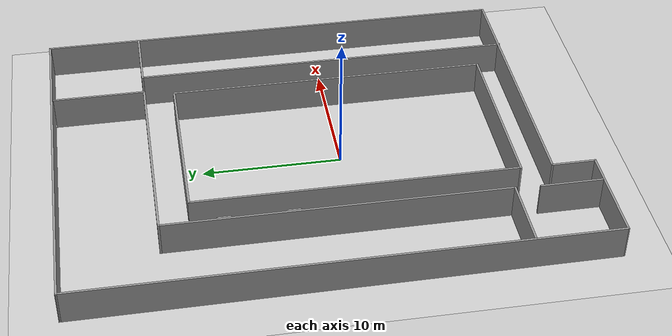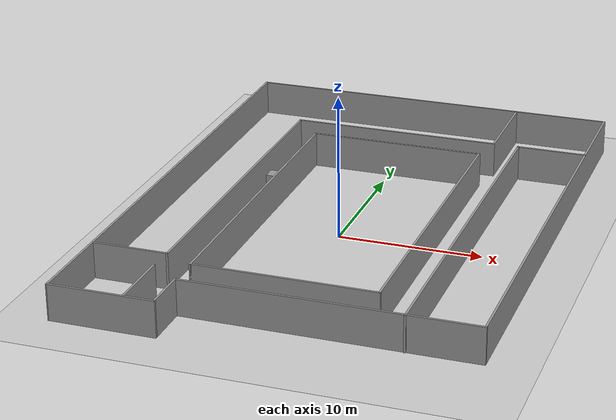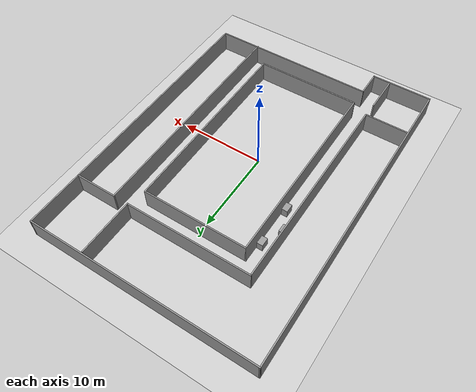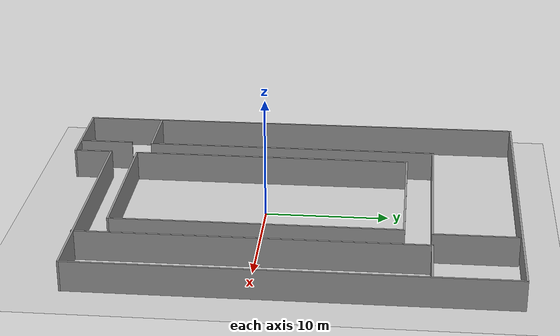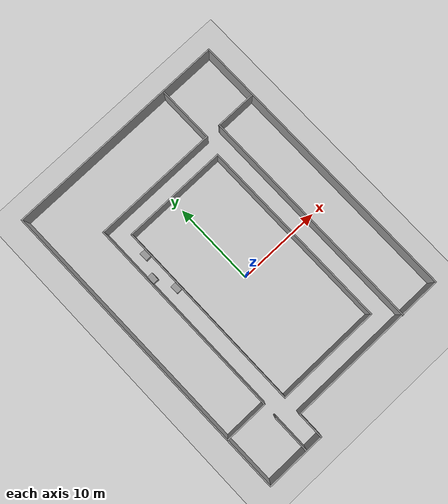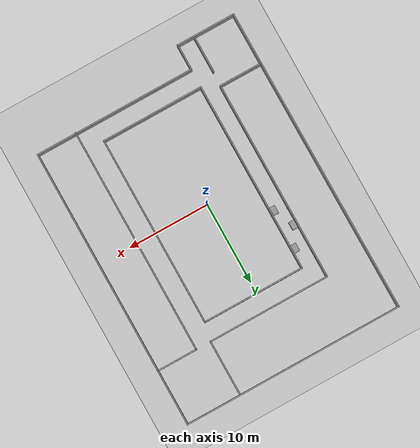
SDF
<sdf version="1.7">
 <world name="default">
  <light name="sun" type="directional">
   <pose>0 0 10 0 -0 0</pose>
   <diffuse>0.8 0.8 0.8 1</diffuse>
   <specular>0.2 0.2 0.2 1</specular>
   <attenuation>
    <range>1000</range>
    <constant>0.9</constant>
    <linear>0.01</linear>
    <quadratic>0.001</quadratic>
   </attenuation>
   <direction>-0.5 0.1 -0.9</direction>
   <spot><inner_angle>0</inner_angle><outer_angle>0</outer_angle><falloff>0</falloff></spot>
  </light>
  <model name="ground_plane">
   <static>1</static>
   <link name="link">
    <collision name="collision">
     <geometry><plane><normal>0 0 1</normal><size>100 100</size></plane></geometry>
     <surface>
      <contact><collide_bitmask>65535</collide_bitmask></contact>
      <friction><ode><mu>100</mu><mu2>50</mu2></ode></friction>
     </surface>
    </collision>
    <visual name="visual">
     <cast_shadows>0</cast_shadows>
     <geometry><plane><normal>0 0 1</normal><size>100 100</size></plane></geometry>
     <material>
      <script><uri>file://media/materials/scripts/gazebo.material</uri><name>Gazebo/Grey</name></script>
     </material>
    </visual>
   </link>
  </model>
  <gravity>0 0 -9.8</gravity>
  <magnetic_field>6e-06 2.3e-05 -4.2e-05</magnetic_field>
  <atmosphere type="adiabatic"/>
  <physics name="default_physics" default="0" type="ode">
   <max_step_size>0.001</max_step_size>
   <real_time_factor>1</real_time_factor>
   <real_time_update_rate>1000</real_time_update_rate>
  </physics>
  <scene><ambient>0.4 0.4 0.4 1</ambient><background>0.7 0.7 0.7 1</background><shadows>1</shadows></scene>
  <audio><device>default</device></audio>
  <spherical_coordinates>
   <surface_model>EARTH_WGS84</surface_model>
   <latitude_deg>0</latitude_deg>
   <longitude_deg>0</longitude_deg>
   <elevation>0</elevation>
   <heading_deg>0</heading_deg>
  </spherical_coordinates>
  <model name="GGB_lab">
   <pose>0.419741 1.65793 0 0 -0 0</pose>
   <link name="Wall_0">
    <collision name="Wall_0_Collision">
     <geometry><box><size>27 0.15 2.5</size></box></geometry>
     <pose>0 0 1.25 0 -0 0</pose>
    </collision>
    <visual name="Wall_0_Visual">
     <pose>0 0 1.25 0 -0 0</pose>
     <geometry><box><size>27 0.15 2.5</size></box></geometry>
     <material>
      <script><uri>file://media/materials/scripts/gazebo.material</uri><name>Gazebo/Grey</name></script>
      <ambient>1 1 1 1</ambient>
     </material>
     <meta><layer>0</layer></meta>
    </visual>
    <pose>0.000153 18.725 0 0 -0 0</pose>
   </link>
   <link name="Wall_1">
    <collision name="Wall_1_Collision">
     <geometry><box><size>34.5 0.15 2.5</size></box></geometry>
     <pose>0 0 1.25 0 -0 0</pose>
    </collision>
    <visual name="Wall_1_Visual">
     <pose>0 0 1.25 0 -0 0</pose>
     <geometry><box><size>34.5 0.15 2.5</size></box></geometry>
     <material>
      <script><uri>file://media/materials/scripts/gazebo.material</uri><name>Gazebo/Grey</name></script>
      <ambient>1 1 1 1</ambient>
     </material>
     <meta><layer>0</layer></meta>
    </visual>
    <pose>13.4251 1.55001 0 0 -0 -1.5708</pose>
   </link>
   <link name="Wall_10">
    <collision name="Wall_10_Collision">
     <geometry><box><size>15 0.15 2.5</size></box></geometry>
     <pose>0 0 1.25 0 -0 0</pose>
    </collision>
    <visual name="Wall_10_Visual">
     <pose>0 0 1.25 0 -0 0</pose>
     <geometry><box><size>15 0.15 2.5</size></box></geometry>
     <material>
      <script><uri>file://media/materials/scripts/gazebo.material</uri><name>Gazebo/Grey</name></script>
      <ambient>1 1 1 1</ambient>
     </material>
     <meta><layer>0</layer></meta>
    </visual>
    <pose>-0.683052 11.9115 0 0 -0 3.14159</pose>
   </link>
   <link name="Wall_11">
    <collision name="Wall_11_Collision">
     <geometry><box><size>24.5 0.15 2.5</size></box></geometry>
     <pose>0 0 1.25 0 -0 0</pose>
    </collision>
    <visual name="Wall_11_Visual">
     <pose>0 0 1.25 0 -0 0</pose>
     <geometry><box><size>24.5 0.15 2.5</size></box></geometry>
     <material>
      <script><uri>file://media/materials/scripts/gazebo.material</uri><name>Gazebo/Grey</name></script>
      <ambient>1 1 1 1</ambient>
     </material>
     <meta><layer>0</layer></meta>
    </visual>
    <pose>-8.10805 -0.263517 0 0 -0 -1.5708</pose>
   </link>
   <link name="Wall_12">
    <collision name="Wall_12_Collision">
     <geometry><box><size>5.25 0.15 2.5</size></box></geometry>
     <pose>0 0 1.25 0 -0 0</pose>
    </collision>
    <visual name="Wall_12_Visual">
     <pose>0 0 1.25 0 -0 0</pose>
     <geometry><box><size>5.25 0.15 2.5</size></box></geometry>
     <material>
      <script><uri>file://media/materials/scripts/gazebo.material</uri><name>Gazebo/Grey</name></script>
      <ambient>1 1 1 1</ambient>
     </material>
     <meta><layer>0</layer></meta>
    </visual>
    <pose>-10.6581 -12.4385 0 0 -0 3.14159</pose>
   </link>
   <link name="Wall_14">
    <collision name="Wall_14_Collision">
     <geometry><box><size>4.5 0.15 2.5</size></box></geometry>
     <pose>0 0 1.25 0 -0 0</pose>
    </collision>
    <visual name="Wall_14_Visual">
     <pose>0 0 1.25 0 -0 0</pose>
     <geometry><box><size>4.5 0.15 2.5</size></box></geometry>
     <material>
      <script><uri>file://media/materials/scripts/gazebo.material</uri><name>Gazebo/Grey</name></script>
      <ambient>1 1 1 1</ambient>
     </material>
     <meta><layer>0</layer></meta>
    </visual>
    <pose>-8.22346 -16.4226 0 0 -0 -1.5708</pose>
   </link>
   <link name="Wall_16">
    <collision name="Wall_16_Collision">
     <geometry><box><size>6.75 0.15 2.5</size></box></geometry>
     <pose>0 0 1.25 0 -0 0</pose>
    </collision>
    <visual name="Wall_16_Visual">
     <pose>0 0 1.25 0 -0 0</pose>
     <geometry><box><size>6.75 0.15 2.5</size></box></geometry>
     <material>
      <script><uri>file://media/materials/scripts/gazebo.material</uri><name>Gazebo/Grey</name></script>
      <ambient>1 1 1 1</ambient>
     </material>
     <meta><layer>0</layer></meta>
    </visual>
    <pose>6.74195 15.2115 0 0 -0 1.5708</pose>
   </link>
   <link name="Wall_18">
    <collision name="Wall_18_Collision">
     <geometry><box><size>12.5 0.15 2.5</size></box></geometry>
     <pose>0 0 1.25 0 -0 0</pose>
    </collision>
    <visual name="Wall_18_Visual">
     <pose>0 0 1.25 0 -0 0</pose>
     <geometry><box><size>12.5 0.15 2.5</size></box></geometry>
     <material>
      <script><uri>file://media/materials/scripts/gazebo.material</uri><name>Gazebo/Grey</name></script>
      <ambient>1 1 1 1</ambient>
     </material>
     <meta><layer>0</layer></meta>
    </visual>
    <pose>0.050346 9.72142 0 0 -0 0</pose>
   </link>
   <link name="Wall_19">
    <collision name="Wall_19_Collision">
     <geometry><box><size>23.25 0.15 2.5</size></box></geometry>
     <pose>0 0 1.25 0 -0 0</pose>
    </collision>
    <visual name="Wall_19_Visual">
     <pose>0 0 1.25 0 -0 0</pose>
     <geometry><box><size>23.25 0.15 2.5</size></box></geometry>
     <material>
      <script><uri>file://media/materials/scripts/gazebo.material</uri><name>Gazebo/Grey</name></script>
      <ambient>1 1 1 1</ambient>
     </material>
     <meta><layer>0</layer></meta>
    </visual>
    <pose>6.22535 -1.82858 0 0 -0 -1.5708</pose>
   </link>
   <link name="Wall_2">
    <collision name="Wall_2_Collision">
     <geometry><box><size>19.75 0.15 2.5</size></box></geometry>
     <pose>0 0 1.25 0 -0 0</pose>
    </collision>
    <visual name="Wall_2_Visual">
     <pose>0 0 1.25 0 -0 0</pose>
     <geometry><box><size>19.75 0.15 2.5</size></box></geometry>
     <material>
      <script><uri>file://media/materials/scripts/gazebo.material</uri><name>Gazebo/Grey</name></script>
      <ambient>1 1 1 1</ambient>
     </material>
     <meta><layer>0</layer></meta>
    </visual>
    <pose>3.62515 -15.625 0 0 -0 3.14159</pose>
   </link>
   <link name="Wall_20">
    <collision name="Wall_20_Collision">
     <geometry><box><size>12.5 0.15 2.5</size></box></geometry>
     <pose>0 0 1.25 0 -0 0</pose>
    </collision>
    <visual name="Wall_20_Visual">
     <pose>0 0 1.25 0 -0 0</pose>
     <geometry><box><size>12.5 0.15 2.5</size></box></geometry>
     <material>
      <script><uri>file://media/materials/scripts/gazebo.material</uri><name>Gazebo/Grey</name></script>
      <ambient>1 1 1 1</ambient>
     </material>
     <meta><layer>0</layer></meta>
    </visual>
    <pose>0.050346 -13.3786 0 0 -0 3.14159</pose>
   </link>
   <link name="Wall_21">
    <collision name="Wall_21_Collision">
     <geometry><box><size>23.25 0.15 2.5</size></box></geometry>
     <pose>0 0 1.25 0 -0 0</pose>
    </collision>
    <visual name="Wall_21_Visual">
     <pose>0 0 1.25 0 -0 0</pose>
     <geometry><box><size>23.25 0.15 2.5</size></box></geometry>
     <material>
      <script><uri>file://media/materials/scripts/gazebo.material</uri><name>Gazebo/Grey</name></script>
      <ambient>1 1 1 1</ambient>
     </material>
     <meta><layer>0</layer></meta>
    </visual>
    <pose>-6.12465 -1.82858 0 0 -0 1.5708</pose>
   </link>
   <link name="Wall_23">
    <collision name="Wall_23_Collision">
     <geometry><box><size>27.75 0.15 2.5</size></box></geometry>
     <pose>0 0 1.25 0 -0 0</pose>
    </collision>
    <visual name="Wall_23_Visual">
     <pose>0 0 1.25 0 -0 0</pose>
     <geometry><box><size>27.75 0.15 2.5</size></box></geometry>
     <material>
      <script><uri>file://media/materials/scripts/gazebo.material</uri><name>Gazebo/Grey</name></script>
      <ambient>1 1 1 1</ambient>
     </material>
     <meta><layer>0</layer></meta>
    </visual>
    <pose>8.55338 -1.88852 0 0 -0 -1.5708</pose>
   </link>
   <link name="Wall_3">
    <collision name="Wall_3_Collision">
     <geometry><box><size>3.25 0.15 2.5</size></box></geometry>
     <pose>0 0 1.25 0 -0 0</pose>
    </collision>
    <visual name="Wall_3_Visual">
     <pose>0 0 1.25 0 -0 0</pose>
     <geometry><box><size>3.25 0.15 2.5</size></box></geometry>
     <material>
      <script><uri>file://media/materials/scripts/gazebo.material</uri><name>Gazebo/Grey</name></script>
      <ambient>1 1 1 1</ambient>
     </material>
     <meta><layer>0</layer></meta>
    </visual>
    <pose>-6.17485 -17.175 0 0 -0 -1.5708</pose>
   </link>
   <link name="Wall_4">
    <collision name="Wall_4_Collision">
     <geometry><box><size>7.25 0.15 2.5</size></box></geometry>
     <pose>0 0 1.25 0 -0 0</pose>
    </collision>
    <visual name="Wall_4_Visual">
     <pose>0 0 1.25 0 -0 0</pose>
     <geometry><box><size>7.25 0.15 2.5</size></box></geometry>
     <material>
      <script><uri>file://media/materials/scripts/gazebo.material</uri><name>Gazebo/Grey</name></script>
      <ambient>1 1 1 1</ambient>
     </material>
     <meta><layer>0</layer></meta>
    </visual>
    <pose>-9.72485 -18.725 0 0 -0 3.14159</pose>
   </link>
   <link name="Wall_5">
    <collision name="Wall_5_Collision">
     <geometry><box><size>37.6003 0.15 2.5</size></box></geometry>
     <pose>0 0 1.25 0 -0 0</pose>
    </collision>
    <visual name="Wall_5_Visual">
     <pose>0 0 1.25 0 -0 0</pose>
     <geometry><box><size>37.6003 0.15 2.5</size></box></geometry>
     <material>
      <script><uri>file://media/materials/scripts/gazebo.material</uri><name>Gazebo/Grey</name></script>
      <ambient>1 1 1 1</ambient>
     </material>
     <meta><layer>0</layer></meta>
    </visual>
    <pose>-13.3498 2e-06 0 0 -0 1.5748</pose>
   </link>
   <link name="Wall_7">
    <collision name="Wall_7_Collision">
     <geometry><box><size>5 0.15 2.5</size></box></geometry>
     <pose>0 0 1.25 0 -0 0</pose>
    </collision>
    <visual name="Wall_7_Visual">
     <pose>0 0 1.25 0 -0 0</pose>
     <geometry><box><size>5 0.15 2.5</size></box></geometry>
     <material>
      <script><uri>file://media/materials/scripts/gazebo.material</uri><name>Gazebo/Grey</name></script>
      <ambient>1 1 1 1</ambient>
     </material>
     <meta><layer>0</layer></meta>
    </visual>
    <pose>10.9784 11.9115 0 0 -0 3.14159</pose>
   </link>
   <static>1</static>
  </model>
  <model name="unit_box">
   <pose>-6.16972 4.22752 0.499995 1e-05 -0 1.1e-05</pose>
   <link name="link">
    <inertial>
     <mass>1</mass>
     <inertia>
      <ixx>0.166667</ixx>
      <ixy>0</ixy>
      <ixz>0</ixz>
      <iyy>0.166667</iyy>
      <iyz>0</iyz>
      <izz>0.166667</izz>
     </inertia>
    </inertial>
    <collision name="collision"><geometry><box><size>0.680203 1 1</size></box></geometry></collision>
    <visual name="visual">
     <geometry><box><size>0.680203 1 1</size></box></geometry>
     <material>
      <script><name>Gazebo/Grey</name><uri>file://media/materials/scripts/gazebo.material</uri></script>
     </material>
    </visual>
   </link>
  </model>
  <model name="unit_box_clone">
   <pose>-7.27318 6.69357 0.5 0 -0 2e-06</pose>
   <link name="link">
    <inertial>
     <mass>1</mass>
     <inertia>
      <ixx>0.166667</ixx>
      <ixy>0</ixy>
      <ixz>0</ixz>
      <iyy>0.166667</iyy>
      <iyz>0</iyz>
      <izz>0.166667</izz>
     </inertia>
    </inertial>
    <collision name="collision"><geometry><box><size>0.680203 1 1</size></box></geometry></collision>
    <visual name="visual">
     <geometry><box><size>0.680203 1 1</size></box></geometry>
     <material>
      <script><name>Gazebo/Grey</name><uri>file://media/materials/scripts/gazebo.material</uri></script>
     </material>
    </visual>
   </link>
  </model>
  <model name="unit_box_clone_clone">
   <pose>-6.16974 9.05715 0.5 0 -0 1e-06</pose>
   <link name="link">
    <inertial>
     <mass>1</mass>
     <inertia>
      <ixx>0.166667</ixx>
      <ixy>0</ixy>
      <ixz>0</ixz>
      <iyy>0.166667</iyy>
      <iyz>0</iyz>
      <izz>0.166667</izz>
     </inertia>
    </inertial>
    <collision name="collision"><geometry><box><size>0.680203 1 1</size></box></geometry></collision>
    <visual name="visual">
     <geometry><box><size>0.680203 1 1</size></box></geometry>
     <material>
      <script><name>Gazebo/Grey</name><uri>file://media/materials/scripts/gazebo.material</uri></script>
     </material>
    </visual>
   </link>
  </model>
 </world>
</sdf>
